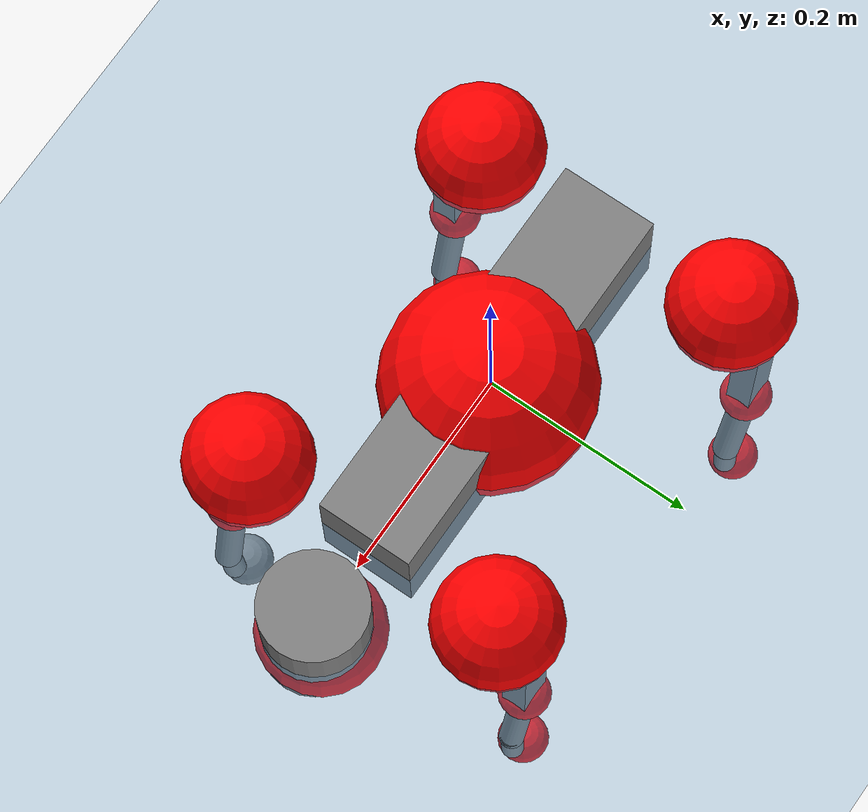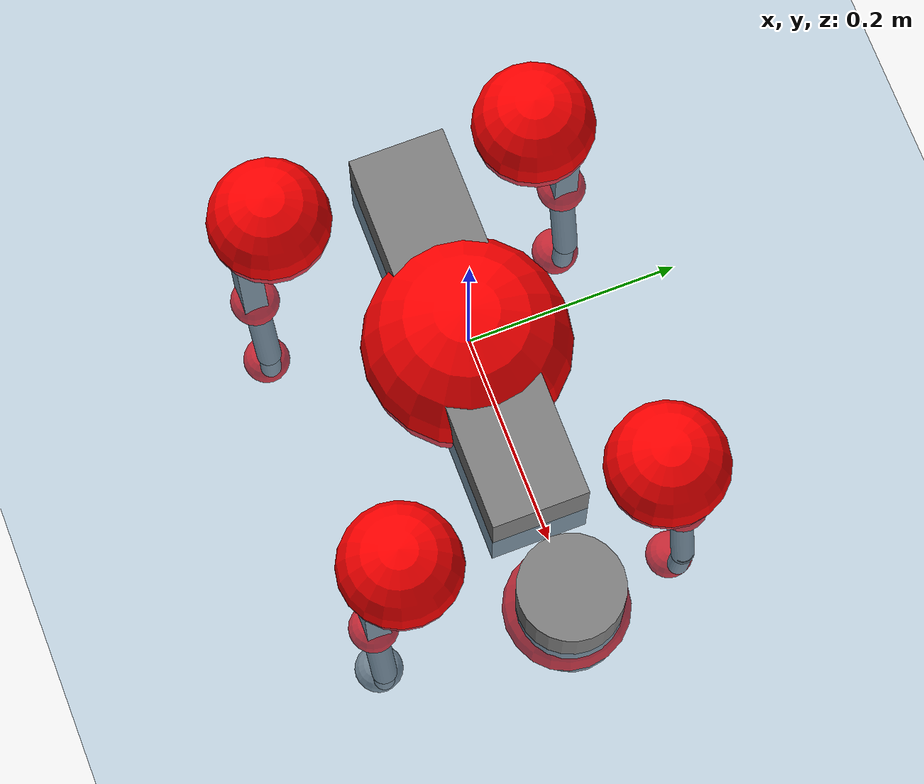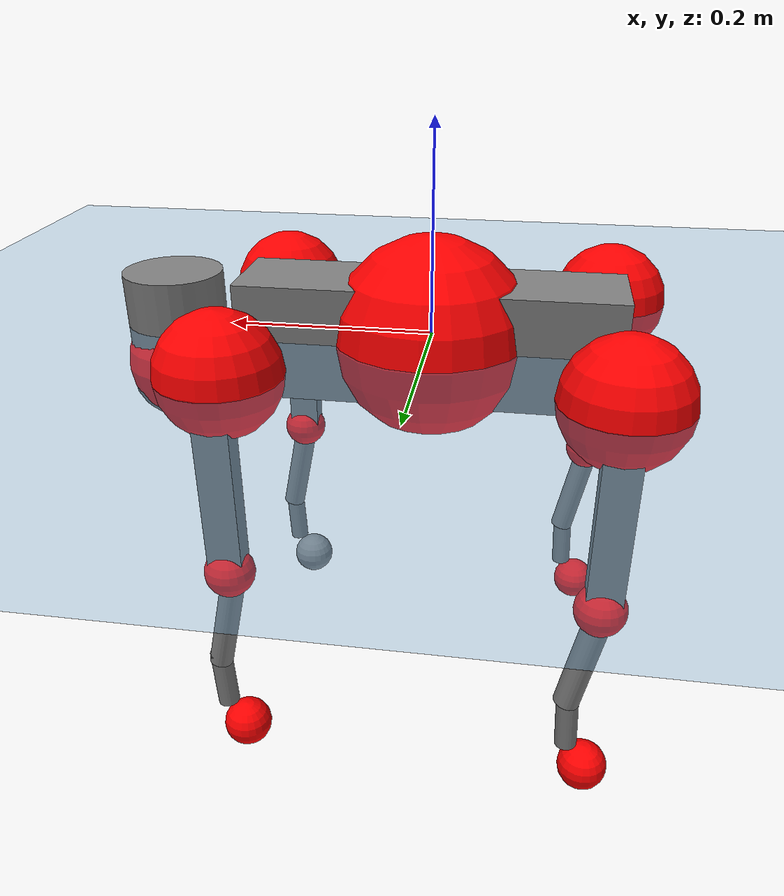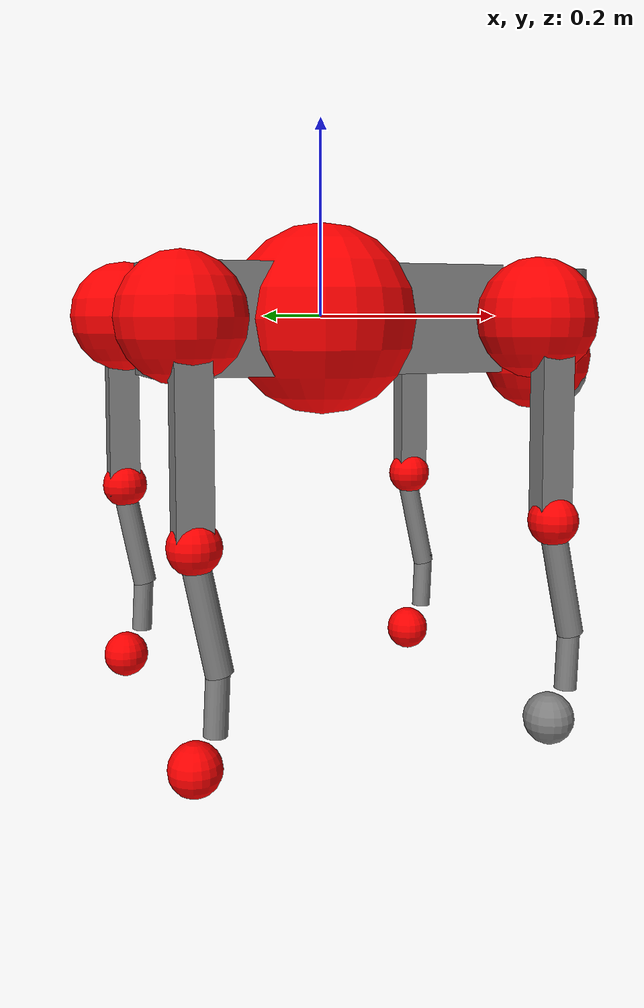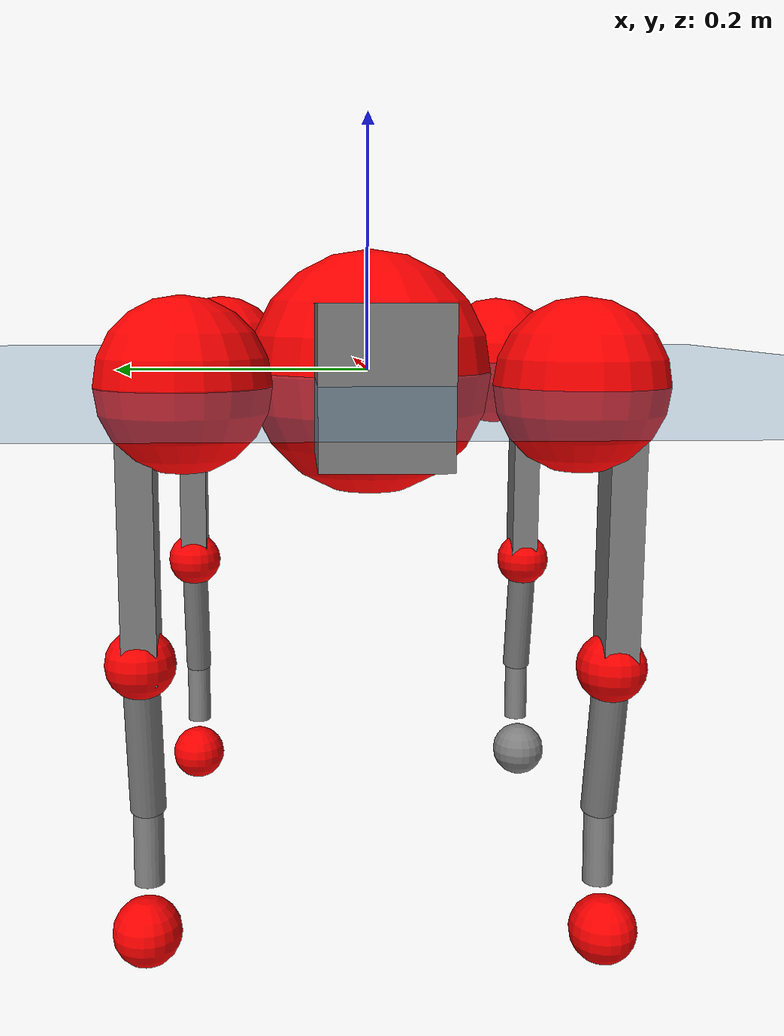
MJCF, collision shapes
<mujoco model="go2">
  <compiler angle="radian" assetdir="assets" balanceinertia="true" inertiafromgeom="false"/>

  <option timestep="0.005" density="1.2" viscosity="2e-05"/>

  <size nkey="1"/>

  <visual>
    <quality shadowsize="8192"/>
    <map shadowclip="0.5"/>
  </visual>

  <default>
    <default class="/">
      <geom contype="0" conaffinity="0" group="1" solref="-1000 -80"/>
      <site size="0.01 0.005 0.005" group="5"/>
      <general forcelimited="true" biastype="affine" gainprm="20" biasprm="0 -20 -0.5"/>
      <default class="go2">
        <joint armature="0.01" damping="0.01" frictionloss="0.2"/>
        <geom condim="1" margin="0.001"/>
        <default class="visual">
          <geom type="mesh" group="2"/>
        </default>
        <default class="collision">
          <geom group="3"/>
          <default class="foot">
            <geom size="0.022 0 0" condim="6" priority="1" friction="0.8 0.02 0.01" solimp="0.015 1 0.022"/>
          </default>
        </default>
        <default class="reward_collision_sphere">
          <geom group="5" rgba="1 0 0 1"/>
        </default>
      </default>
    </default>
  </default>

  <asset>
    <texture type="skybox" colorspace="auto" name="//unnamed_texture_0" builtin="gradient" rgb1="0.95 0.95 0.95" rgb2="0.95 0.95 0.95" width="100" height="600"/>
    <texture type="2d" colorspace="auto" name="texplane" builtin="checker" rgb1="0.345 0.575 0.748" rgb2="0.345 0.575 0.748" markrgb="1 1 1" width="512" height="512"/>
    <material name="MatPlane" class="/" texture="texplane" texuniform="true" texrepeat="2 2" specular="0.9"/>
    <material name="metal" class="/" rgba="0.9 0.95 0.95 1"/>
    <material name="black" class="/" rgba="0 0 0 1"/>
    <material name="white" class="/"/>
    <material name="gray" class="/" rgba="0.671705 0.692426 0.77427 1"/>
    <mesh name="base_0" class="/" file="base_0.obj"/>
    <mesh name="base_1" class="/" file="base_1.obj"/>
    <mesh name="base_2" class="/" file="base_2.obj"/>
    <mesh name="base_3" class="/" file="base_3.obj"/>
    <mesh name="base_4" class="/" file="base_4.obj"/>
    <mesh name="hip_0" class="/" file="hip_0.obj"/>
    <mesh name="hip_1" class="/" file="hip_1.obj"/>
    <mesh name="thigh_0" class="/" file="thigh_0.obj"/>
    <mesh name="thigh_1" class="/" file="thigh_1.obj"/>
    <mesh name="thigh_mirror_0" class="/" file="thigh_mirror_0.obj"/>
    <mesh name="thigh_mirror_1" class="/" file="thigh_mirror_1.obj"/>
    <mesh name="calf_0" class="/" file="calf_0.obj"/>
    <mesh name="calf_1" class="/" file="calf_1.obj"/>
    <mesh name="calf_mirror_0" class="/" file="calf_mirror_0.obj"/>
    <mesh name="calf_mirror_1" class="/" file="calf_mirror_1.obj"/>
    <mesh name="foot" class="/" file="foot.obj"/>
  </asset>

  <worldbody>
    <geom name="floor" class="/" size="100 100 0.125" type="plane" group="0" material="MatPlane"/>
    <light name="toplight_shadow" class="/" pos="0 0 5" dir="0.0990148 0.0990148 -0.990148" type="directional" ambient="0.04 0.04 0.04" diffuse="0.55 0.55 0.55" specular="0.12 0.12 0.12"/>
    <light name="toplight_fill" class="/" pos="0 0 5" dir="0.0990148 0.0990148 -0.990148" type="directional" castshadow="false" ambient="0.04 0.04 0.04" diffuse="0.3 0.3 0.3" specular="0.08 0.08 0.08"/>
    <body name="trunk" childclass="go2" pos="0.000566486 -0.00204234 -0.00266791" quat="1 0.000186457 -0.000505708 -0.000285717">
      <inertial pos="0.0201277 0.000426788 -0.00428647" quat="-0.00706419 0.717458 -0.0116299 0.696468" mass="6.72392" diaginertia="0.0633029 0.172506 0.0156956"/>
      <joint name="//unnamed_joint_0" type="free" armature="0" damping="0" frictionloss="0"/>
      <geom name="//unnamed_geom_1" class="visual" material="black" mesh="base_0"/>
      <geom name="//unnamed_geom_2" class="visual" material="black" mesh="base_1"/>
      <geom name="//unnamed_geom_3" class="visual" material="black" mesh="base_2"/>
      <geom name="//unnamed_geom_4" class="visual" material="white" mesh="base_3"/>
      <geom name="//unnamed_geom_5" class="visual" material="gray" mesh="base_4"/>
      <geom name="trunk_1" class="collision" size="0.183942 0.0457165 0.0557399" type="box"/>
      <geom name="trunk_2" class="collision" size="0.0488946 0.0440052" pos="0.257395 0 0.00911974" type="cylinder"/>
      <geom name="trunk_3" class="collision" size="0.045961" pos="0.26462 0 -0.0547184"/>
      <geom name="//unnamed_geom_9" class="reward_collision_sphere" size="0.0977893"/>
      <geom name="//unnamed_geom_10" class="reward_collision_sphere" size="0.0586736" pos="0.252879 0 -0.0410388"/>
      <site name="imu" pos="-0.0278842 0.0128806 0.0284293" size="0.00977893"/>
      <camera name="track" pos="0 -2.23713 0" quat="0.707107 0.707107 0 0" mode="trackcom"/>
      <camera name="ego_camera" pos="0.281779 0 0.0410388" quat="-0.5 -0.5 0.5 0.5"/>
      <body name="FL_hip" pos="0.172209 0.0494736 0.0027171" quat="1 6.24003e-05 0.000239246 0.000112923">
        <inertial pos="-0.00367949 -0.000335037 -0.00285889" quat="0.496761 0.496506 0.508753 0.497876" mass="0.636574" diaginertia="0.000530405 0.00105289 0.000315265"/>
        <joint name="FL_hip_joint" pos="0 0 0" axis="0.999951 0.00144311 -0.00975153" range="-1.03463 1.03503" armature="0.0105683" damping="0" frictionloss="0.222414"/>
        <geom name="//unnamed_geom_11" class="visual" material="metal" mesh="hip_0"/>
        <geom name="//unnamed_geom_12" class="visual" material="gray" mesh="hip_1"/>
        <geom name="//unnamed_geom_13" class="collision" size="0.0449831 0.0195579" pos="0 0.0894852 0" quat="0.707107 0.707107 0 0" type="cylinder"/>
        <geom name="//unnamed_geom_14" class="reward_collision_sphere" size="0.0586736" pos="0 0.0782995 0"/>
        <body name="FL_thigh" pos="-0.000711911 0.107073 0.00290197" quat="1 -0.000497406 -0.000168351 -0.000193537">
          <inertial pos="-0.00396157 -0.0250015 -0.0294821" quat="0.830626 0.0860572 -0.0223117 0.549688" mass="1.05097" diaginertia="0.00358678 0.0104683 0.000535284"/>
          <joint name="FL_thigh_joint" pos="0 0 0" axis="0.000943579 0.999947 0.0103007" range="-1.59284 3.52054" armature="0.0105706" damping="0.00867763" frictionloss="0.222484"/>
          <geom name="//unnamed_geom_15" class="visual" material="metal" mesh="thigh_0"/>
          <geom name="//unnamed_geom_16" class="visual" material="gray" mesh="thigh_1"/>
          <geom name="//unnamed_geom_17" class="collision" size="0.104146 0.0119792 0.0166242" pos="0 0 -0.0971252" quat="0.707107 0 0.707107 0" type="box"/>
          <body name="FL_calf" pos="-0.000486638 0.000539864 -0.194442" quat="0.999999 -0.000933036 -0.000562166 0.000465538">
            <inertial pos="0.00817507 0.00211311 -0.130618" quat="0.712209 0.00233181 -0.00545536 0.701943" mass="0.231456" diaginertia="0.000867802 0.00264853 3.25534e-05"/>
            <joint name="FL_calf_joint" pos="0 0 0" axis="-3.18141e-05 1 5.2046e-05" range="-2.72199 -0.857312" armature="0.00834096" damping="0.0030397" frictionloss="0.191949"/>
            <geom name="//unnamed_geom_18" class="visual" material="gray" mesh="calf_0"/>
            <geom name="//unnamed_geom_19" class="visual" material="black" mesh="calf_1"/>
            <geom name="FL_calf0" class="collision" size="0.0117347 0.0586736" pos="0.00722512 0 -0.0547184" quat="0.994493 0 -0.104807 0" type="cylinder"/>
            <geom name="//unnamed_geom_21" class="collision" size="0.0107568 0.0317815" pos="0.0180628 0 -0.134972" quat="0.999688 0 0.0249974 0" type="cylinder"/>
            <geom name="//unnamed_geom_22" class="visual" pos="0 0 -0.19425" quat="1 0 0 0" material="black" mesh="foot"/>
            <geom name="FL_foot" class="foot" size="0.0227705" pos="-0.00180628 0 -0.19425"/>
            <geom name="//unnamed_geom_24" class="reward_collision_sphere" size="0.0244473"/>
            <geom name="//unnamed_geom_25" class="reward_collision_sphere" size="0.0244473" pos="-0.00180628 0 -0.19425"/>
            <site name="FL_foot" class="foot" pos="-0.00180628 0 -0.19425" size="0.00977893"/>
          </body>
        </body>
      </body>
      <body name="FR_hip" pos="0.174165 -0.0517702 0.00111773" quat="0.999999 0.00038988 -0.000839421 -0.00102721">
        <inertial pos="-0.00360952 -0.000150075 -0.000583483" quat="0.501761 0.505693 0.496427 0.496055" mass="0.632786" diaginertia="0.000540821 0.00105118 0.000301344"/>
        <joint name="FR_hip_joint" pos="0 0 0" axis="0.999996 0.00230042 -0.00162464" range="-0.996852 1.05057" armature="0.0102422" damping="0.00389102" frictionloss="0.188624"/>
        <geom name="//unnamed_geom_26" class="visual" pos="0 1.79973e-09 7.71943e-08" quat="4.63268e-05 1 0 0" material="metal" mesh="hip_0"/>
        <geom name="//unnamed_geom_27" class="visual" pos="0 2.91758e-09 -1.90931e-07" quat="4.63268e-05 1 0 0" material="gray" mesh="hip_1"/>
        <geom name="//unnamed_geom_28" class="collision" size="0.0449831 0.0195579" pos="0 -0.0894852 0" quat="0.707107 0.707107 0 0" type="cylinder"/>
        <geom name="//unnamed_geom_29" class="reward_collision_sphere" size="0.0586736" pos="0 -0.0782995 0"/>
        <body name="FR_thigh" pos="-0.000454249 -0.108968 0.000332196" quat="1 -2.57959e-05 1.14259e-06 8.3814e-06">
          <inertial pos="-0.0052261 0.0260878 -0.0318862" quat="0.550632 -0.0188479 0.0841225 0.830284" mass="1.06056" diaginertia="0.00344605 0.00955965 0.00052794"/>
          <joint name="FR_thigh_joint" pos="0 0 0" axis="0.00405214 -0.999901 -0.0134443" range="-3.53564 1.51472" armature="0.00963018" damping="0.00751132" frictionloss="0.222591"/>
          <geom name="//unnamed_geom_30" class="visual" material="metal" mesh="thigh_mirror_0"/>
          <geom name="//unnamed_geom_31" class="visual" material="gray" mesh="thigh_mirror_1"/>
          <geom name="//unnamed_geom_32" class="collision" size="0.104146 0.0119792 0.0166242" pos="0 0 -0.0971252" quat="0.707107 0 0.707107 0" type="box"/>
          <body name="FR_calf" pos="0.0022749 -0.00145939 -0.193914" quat="1 3.77909e-06 3.03319e-05 2.1139e-05">
            <inertial pos="0.00836538 0.000204293 -0.131316" quat="0.703747 -0.00406955 0.00346991 0.710431" mass="0.23445" diaginertia="0.00091684 0.00253626 3.35848e-05"/>
            <joint name="FR_calf_joint" pos="0 0 0" axis="-1.40073e-05 -1 -0.000138608" range="0.848599 2.72886" armature="0.00939379" damping="0.0222266" frictionloss="0.213333"/>
            <geom name="//unnamed_geom_33" class="visual" material="gray" mesh="calf_mirror_0"/>
            <geom name="//unnamed_geom_34" class="visual" material="black" mesh="calf_mirror_1"/>
            <geom name="FR_calf0" class="collision" size="0.0127126 0.0586736" pos="0.00903139 0 -0.0547184" quat="0.995004 0 -0.0998334 0" type="cylinder"/>
            <geom name="//unnamed_geom_36" class="collision" size="0.0107568 0.0317815" pos="0.0180628 0 -0.134972" quat="0.999688 0 0.0249974 0" type="cylinder"/>
            <geom name="//unnamed_geom_37" class="visual" pos="0 0 -0.19425" quat="1 0 0 0" material="black" mesh="foot"/>
            <geom name="FR_foot" class="foot" size="0.0247168" pos="-0.00180628 0 -0.19425"/>
            <geom name="//unnamed_geom_39" class="reward_collision_sphere" size="0.0244473"/>
            <geom name="//unnamed_geom_40" class="reward_collision_sphere" size="0.0244473" pos="-0.00180628 0 -0.19425"/>
            <site name="FR_foot" class="foot" pos="-0.00180628 0 -0.19425" size="0.00977893"/>
          </body>
        </body>
      </body>
      <body name="RL_hip" pos="-0.177612 0.0554221 0.00285463" quat="1 -0.000820147 0.000367451 0.000409745">
        <inertial pos="0.00466597 0.00193209 0.000271002" quat="0.505319 0.498313 0.496908 0.499419" mass="0.639077" diaginertia="0.000525034 0.00105542 0.00029226"/>
        <joint name="RL_hip_joint" pos="0 0 0" axis="-0.999678 -0.0241294 -0.00782444" stiffness="0.00934835" range="-1.07063 1.04753" armature="0.00993524" damping="0.0134501" frictionloss="0.221308"/>
        <geom name="//unnamed_geom_41" class="visual" pos="7.6964e-11 0 1.50867e-08" quat="4.63268e-05 0 1 0" material="metal" mesh="hip_0"/>
        <geom name="//unnamed_geom_42" class="visual" pos="1.24768e-10 0 1.33798e-08" quat="4.63268e-05 0 1 0" material="gray" mesh="hip_1"/>
        <geom name="//unnamed_geom_43" class="collision" size="0.0449831 0.0195579" pos="0 0.0894852 0" quat="0.707107 0.707107 0 0" type="cylinder"/>
        <geom name="//unnamed_geom_44" class="reward_collision_sphere" size="0.0586736" pos="0 0.0782995 0"/>
        <body name="RL_thigh" pos="0.000578814 0.109906 0.00180864" quat="1 0.000168168 0.000131599 -5.25553e-05">
          <inertial pos="-0.00236619 -0.0255355 -0.0307718" quat="0.830222 0.0820339 -0.0201579 0.550995" mass="1.06191" diaginertia="0.00366178 0.0100207 0.000569975"/>
          <joint name="RL_thigh_joint" pos="0 0 0" axis="-0.00124612 0.999999 0.000169178" range="-0.529375 4.56274" armature="0.00879964" damping="0.0109379" frictionloss="0.171"/>
          <geom name="//unnamed_geom_45" class="visual" material="metal" mesh="thigh_0"/>
          <geom name="//unnamed_geom_46" class="visual" material="gray" mesh="thigh_1"/>
          <geom name="//unnamed_geom_47" class="collision" size="0.104146 0.0119792 0.0166242" pos="0 0 -0.0971252" quat="0.707107 0 0.707107 0" type="box"/>
          <body name="RL_calf" pos="0.00167737 0.00125541 -0.190727" quat="1 4.3569e-05 9.97916e-06 8.31364e-06">
            <inertial pos="0.00550257 -0.000280063 -0.126393" quat="0.710303 0.00386634 -0.0042854 0.703872" mass="0.227336" diaginertia="0.000891491 0.00252446 3.37741e-05"/>
            <joint name="RL_calf_joint" pos="0 0 0" axis="0.00308602 0.999993 -0.00207335" stiffness="0.0033123" range="-2.76338 -0.833993" armature="0.00856158" damping="0.00993423" frictionloss="0.205048"/>
            <geom name="//unnamed_geom_48" class="visual" material="gray" mesh="calf_0"/>
            <geom name="//unnamed_geom_49" class="visual" material="black" mesh="calf_1"/>
            <geom name="RL_calf0" class="collision" size="0.0127126 0.0586736" pos="0.00903139 0 -0.0547184" quat="0.995004 0 -0.0998334 0" type="cylinder"/>
            <geom name="//unnamed_geom_51" class="collision" size="0.0107568 0.0317815" pos="0.0180628 0 -0.134972" quat="0.999688 0 0.0249974 0" type="cylinder"/>
            <geom name="//unnamed_geom_52" class="visual" pos="0 0 -0.19425" quat="1 0 0 0" material="black" mesh="foot"/>
            <geom name="RL_foot" class="foot" size="0.0217771" pos="-0.00180628 0 -0.19425"/>
            <geom name="//unnamed_geom_54" class="reward_collision_sphere" size="0.0244473"/>
            <geom name="//unnamed_geom_55" class="reward_collision_sphere" size="0.0244473" pos="-0.00180628 0 -0.19425"/>
            <site name="RL_foot" class="foot" pos="-0.00180628 0 -0.19425" size="0.00977893"/>
          </body>
        </body>
      </body>
      <body name="RR_hip" pos="-0.175994 -0.0507376 0.00176271" quat="0.999999 -0.000484486 -0.000339762 0.00102935">
        <inertial pos="0.00440663 -0.000867934 -0.000159174" quat="0.499409 0.496307 0.498268 0.505963" mass="0.638592" diaginertia="0.0005542 0.00108634 0.000295703"/>
        <joint name="RR_hip_joint" pos="0 0 0" axis="-0.999992 -0.00117155 0.00376021" range="-1.02952 1.05681" armature="0.0095743" damping="0.00148434" frictionloss="0.189294"/>
        <geom name="//unnamed_geom_56" class="visual" pos="-6.9506e-11 1.79973e-09 -6.21075e-08" quat="2.14617e-09 4.63268e-05 4.63268e-05 -1" material="metal" mesh="hip_0"/>
        <geom name="//unnamed_geom_57" class="visual" pos="-1.43215e-10 2.91758e-09 2.04311e-07" quat="2.14617e-09 4.63268e-05 4.63268e-05 -1" material="gray" mesh="hip_1"/>
        <geom name="//unnamed_geom_58" class="collision" size="0.0449831 0.0195579" pos="0 -0.0894852 0" quat="0.707107 0.707107 0 0" type="cylinder"/>
        <geom name="//unnamed_geom_59" class="reward_collision_sphere" size="0.0586736" pos="0 -0.0782995 0"/>
        <body name="RR_thigh" pos="0.000335391 -0.108677 -0.000439509" quat="0.999999 4.34479e-05 -0.000297334 0.00108572">
          <inertial pos="-0.00359071 0.0223848 -0.0307208" quat="0.55146 -0.0199304 0.0845398 0.829667" mass="1.00617" diaginertia="0.00334067 0.00991053 0.00053505"/>
          <joint name="RR_thigh_joint" pos="0 0 0" axis="0.00734466 -0.999956 0.00585011" range="-4.54041 0.573585" armature="0.0110173" damping="0.00488619" frictionloss="0.176126"/>
          <geom name="//unnamed_geom_60" class="visual" material="metal" mesh="thigh_mirror_0"/>
          <geom name="//unnamed_geom_61" class="visual" material="gray" mesh="thigh_mirror_1"/>
          <geom name="//unnamed_geom_62" class="collision" size="0.104146 0.0119792 0.0166242" pos="0 0 -0.0971252" quat="0.707107 0 0.707107 0" type="box"/>
          <body name="RR_calf" pos="0.00180334 0.00215263 -0.194779" quat="1 -8.19379e-05 -0.000133737 3.76418e-05">
            <inertial pos="0.00403067 0.000495703 -0.126412" quat="0.705551 -0.00662338 -0.0112888 0.708539" mass="0.224497" diaginertia="0.00093495 0.00252899 3.48194e-05"/>
            <joint name="RR_calf_joint" pos="0 0 0" axis="0.00943722 -0.99993 0.00708168" range="0.874906 2.68694" armature="0.00897335" damping="0.016325" frictionloss="0.215286"/>
            <geom name="//unnamed_geom_63" class="visual" material="gray" mesh="calf_mirror_0"/>
            <geom name="//unnamed_geom_64" class="visual" material="black" mesh="calf_mirror_1"/>
            <geom name="RR_calf0" class="collision" size="0.0127126 0.0586736" pos="0.00903139 0 -0.0547184" quat="0.995004 0 -0.0998334 0" type="cylinder"/>
            <geom name="//unnamed_geom_66" class="collision" size="0.0107568 0.0317815" pos="0.0180628 0 -0.134972" quat="0.999688 0 0.0249974 0" type="cylinder"/>
            <geom name="//unnamed_geom_67" class="visual" pos="0 0 -0.19425" quat="1 0 0 0" material="black" mesh="foot"/>
            <geom name="RR_foot" class="foot" size="0.020924" pos="-0.00180628 0 -0.19425"/>
            <geom name="//unnamed_geom_69" class="reward_collision_sphere" size="0.0244473"/>
            <geom name="//unnamed_geom_70" class="reward_collision_sphere" size="0.0244473" pos="-0.00180628 0 -0.19425"/>
            <site name="RR_foot" class="foot" pos="-0.00180628 0 -0.19425" size="0.00977893"/>
          </body>
        </body>
      </body>
    </body>
  </worldbody>

  <contact>
    <pair class="/" geom1="floor" geom2="FL_foot" name="//unnamed_contact_0"/>
    <pair class="/" geom1="floor" geom2="FR_foot" name="//unnamed_contact_1"/>
    <pair class="/" geom1="floor" geom2="RL_foot" name="//unnamed_contact_2"/>
    <pair class="/" geom1="floor" geom2="RR_foot" name="//unnamed_contact_3"/>
  </contact>

  <actuator>
    <general name="FL_hip" class="/" joint="FL_hip_joint" forcerange="-23.733 23.733" gainprm="19.7476" biasprm="0 -19.7476 -0.48966"/>
    <general name="FL_thigh" class="/" joint="FL_thigh_joint" forcerange="-20.8476 20.8476" gainprm="19.7476" biasprm="0 -19.7476 -0.48966"/>
    <general name="FL_calf" class="/" joint="FL_calf_joint" forcerange="-45.2845 45.2845" gainprm="19.7476" biasprm="0 -19.7476 -0.48966"/>
    <general name="FR_hip" class="/" joint="FR_hip_joint" forcerange="-21.9459 21.9459" gainprm="19.7476" biasprm="0 -19.7476 -0.48966"/>
    <general name="FR_thigh" class="/" joint="FR_thigh_joint" forcerange="-22.6996 22.6996" gainprm="19.7476" biasprm="0 -19.7476 -0.48966"/>
    <general name="FR_calf" class="/" joint="FR_calf_joint" forcerange="-41.397 41.397" gainprm="19.7476" biasprm="0 -19.7476 -0.48966"/>
    <general name="RL_hip" class="/" joint="RL_hip_joint" forcerange="-23.2358 23.2358" gainprm="19.7476" biasprm="0 -19.7476 -0.48966"/>
    <general name="RL_thigh" class="/" joint="RL_thigh_joint" forcerange="-23.4023 23.4023" gainprm="19.7476" biasprm="0 -19.7476 -0.48966"/>
    <general name="RL_calf" class="/" joint="RL_calf_joint" forcerange="-44.0614 44.0614" gainprm="19.7476" biasprm="0 -19.7476 -0.48966"/>
    <general name="RR_hip" class="/" joint="RR_hip_joint" forcerange="-23.418 23.418" gainprm="19.7476" biasprm="0 -19.7476 -0.48966"/>
    <general name="RR_thigh" class="/" joint="RR_thigh_joint" forcerange="-21.1687 21.1687" gainprm="19.7476" biasprm="0 -19.7476 -0.48966"/>
    <general name="RR_calf" class="/" joint="RR_calf_joint" forcerange="-44.5019 44.5019" gainprm="19.7476" biasprm="0 -19.7476 -0.48966"/>
  </actuator>

  <sensor>
    <gyro site="imu" name="imu_angular_velocity"/>
    <velocimeter site="imu" name="imu_linear_velocity"/>
    <framelinvel objtype="site" objname="FL_foot" name="FL_foot_global_linear_velocity"/>
    <framelinvel objtype="site" objname="FR_foot" name="FR_foot_global_linear_velocity"/>
    <framelinvel objtype="site" objname="RL_foot" name="RL_foot_global_linear_velocity"/>
    <framelinvel objtype="site" objname="RR_foot" name="RR_foot_global_linear_velocity"/>
  </sensor>

  <keyframe>
    <key name="home" qpos="0 0 0.325 1 0 0 0 0.1 0.8 -1.5 -0.1 -0.8 1.5 -0.1 0.8 -1.5 0.1 -0.8 1.5"/>
  </keyframe>
</mujoco>
